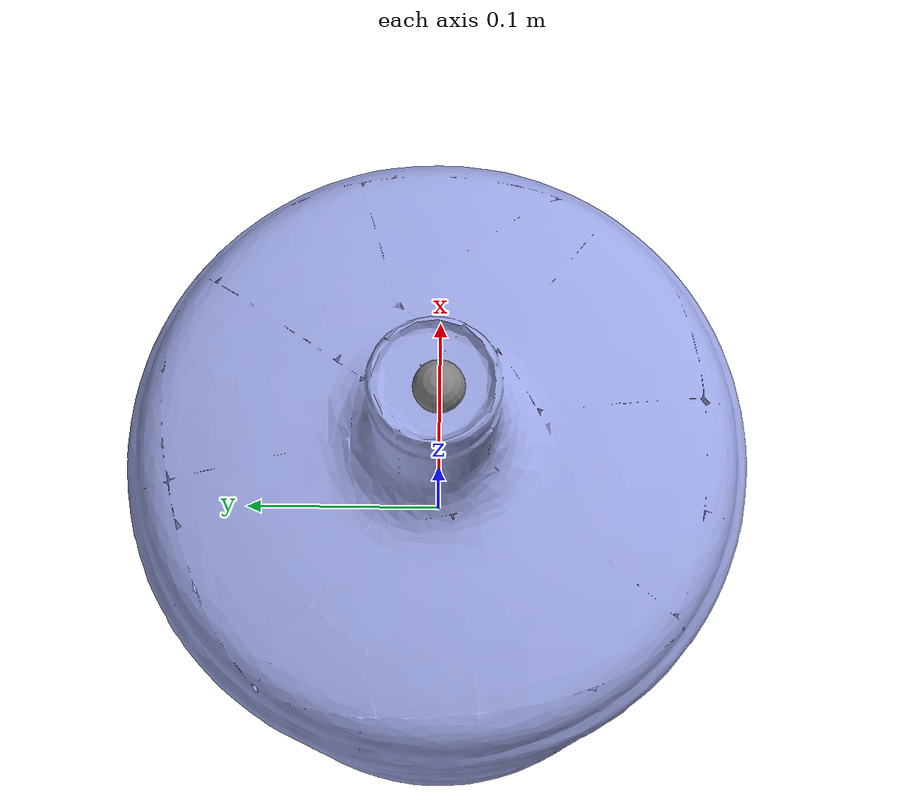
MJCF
<mujoco model="jug">
  <include file="barrel_jug_defs.xml"/>

  <worldbody>
    <body name="barrel" pos="0 0 0">
      <joint name="barrel_joint" type="free"/>

      <inertial pos="0 0 -0.03" mass="1.0" diaginertia="0.0243 0.0243 0.014"/>

      <!-- Visual = full mesh; collision = its convex hull. Identity pose on both so
           body frame stays exactly the tracking-mesh frame. -->
      <geom name="barrel_visual" class="visual_jug" type="mesh" mesh="barrel_jug_mesh" material="barrel_jug_material"/>
      <geom name="barrel_collision" class="collision_jug" type="mesh" mesh="barrel_jug_mesh"/>

      <!-- REQUIRED: shared spot_components/sensor.xml references site_object.
           Identity pose => object_y/z_axis sensors report the jug's own axes. -->
      <site name="site_object" pos="0 0 0" size="0.01"/>
      <site name="trace_barrel" pos="0 0 0.24" size="0.01"/>
    </body>
  </worldbody>
</mujoco>

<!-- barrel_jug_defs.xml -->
<mujoco model="jug_defs">
  <default>
    <default class="visual_jug">
      <geom type="mesh" contype="0" conaffinity="0" group="2"/>
    </default>
    <default class="collision_jug">
      <!-- Collision uses the mesh's convex hull (computed by MuJoCo). priority=6 and
           friction follow the other sumo objects (barrel/pit). -->
      <geom priority="6" group="3" friction="0.6 0.005 0.0001"/>
    </default>
  </default>

  <asset>
    <material name="barrel_jug_material" rgba="0.60 0.64 0.88 1" specular="0.4" shininess="0.5"/>
    <mesh name="barrel_jug_mesh" file="../../../meshes/jug/jug_meshy_20k.obj"/>
  </asset>
</mujoco>
